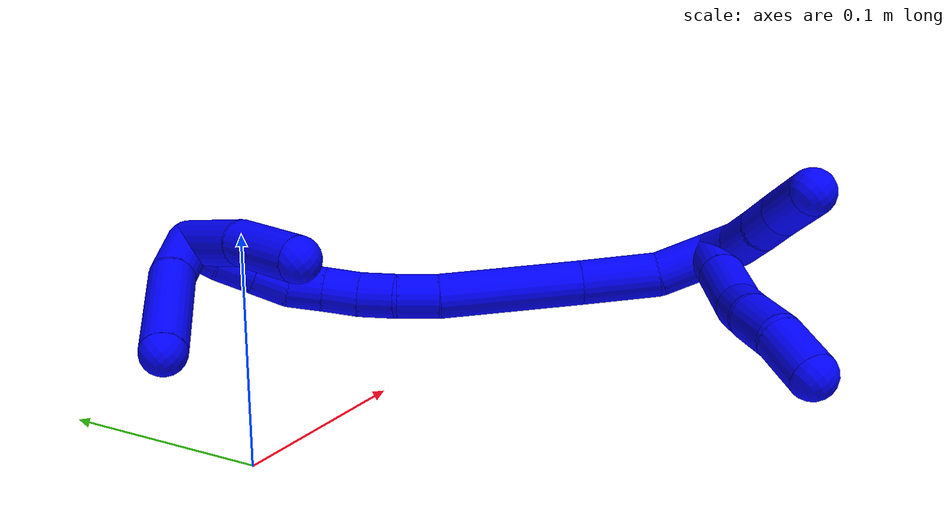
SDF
<sdf version="1.7">
 <world name="default">
  <model name="1">
   <static>0</static>
   <link name="1">
    <collision name="collision-cylinder-e_1_2_8">
     <pose>-0.008599 -0.011028 -0.005153 2.00796 -0.615013 -0.925629</pose>
     <geometry><cylinder><radius>0.0125</radius><length>0.029806</length></cylinder></geometry>
     <surface>
      <friction><ode><mu>1.16</mu><mu2>1.16</mu2><slip1>0</slip1><slip2>0</slip2></ode></friction>
      <contact><ode><kp>1e+06</kp><kd>1</kd><max_vel>0</max_vel><min_depth>0.001</min_depth></ode></contact>
     </surface>
    </collision>
    <visual name="visual-cylinder-e_1_2_8">
     <pose>-0.008599 -0.011028 -0.005153 2.00796 -0.615013 -0.925629</pose>
     <geometry><cylinder><radius>0.0125</radius><length>0.029806</length></cylinder></geometry>
     <material><ambient>0 0 1 1</ambient></material>
    </visual>
    <collision name="collision-cylinder-e_2_8_9">
     <pose>-0.027634 -0.036774 -0.01668 1.97941 -0.576877 -0.84871</pose>
     <geometry><cylinder><radius>0.0125</radius><length>0.038272</length></cylinder></geometry>
     <surface>
      <friction><ode><mu>1.16</mu><mu2>1.16</mu2><slip1>0</slip1><slip2>0</slip2></ode></friction>
      <contact><ode><kp>1e+06</kp><kd>1</kd><max_vel>0</max_vel><min_depth>0.001</min_depth></ode></contact>
     </surface>
    </collision>
    <visual name="visual-cylinder-e_2_8_9">
     <pose>-0.027634 -0.036774 -0.01668 1.97941 -0.576877 -0.84871</pose>
     <geometry><cylinder><radius>0.0125</radius><length>0.038272</length></cylinder></geometry>
     <material><ambient>0 0 1 1</ambient></material>
    </visual>
    <collision name="collision-cylinder-e_3_9_10">
     <pose>-0.046726 -0.059525 -0.025557 1.87296 -0.799512 -1.04255</pose>
     <geometry><cylinder><radius>0.0125</radius><length>0.02414</length></cylinder></geometry>
     <surface>
      <friction><ode><mu>1.16</mu><mu2>1.16</mu2><slip1>0</slip1><slip2>0</slip2></ode></friction>
      <contact><ode><kp>1e+06</kp><kd>1</kd><max_vel>0</max_vel><min_depth>0.001</min_depth></ode></contact>
     </surface>
    </collision>
    <visual name="visual-cylinder-e_3_9_10">
     <pose>-0.046726 -0.059525 -0.025557 1.87296 -0.799512 -1.04255</pose>
     <geometry><cylinder><radius>0.0125</radius><length>0.02414</length></cylinder></geometry>
     <material><ambient>0 0 1 1</ambient></material>
    </visual>
    <collision name="collision-cylinder-e_4_10_11">
     <pose>-0.063336 -0.079441 -0.029804 1.7165 -0.585017 -0.670789</pose>
     <geometry><cylinder><radius>0.0125</radius><length>0.028813</length></cylinder></geometry>
     <surface>
      <friction><ode><mu>1.16</mu><mu2>1.16</mu2><slip1>0</slip1><slip2>0</slip2></ode></friction>
      <contact><ode><kp>1e+06</kp><kd>1</kd><max_vel>0</max_vel><min_depth>0.001</min_depth></ode></contact>
     </surface>
    </collision>
    <visual name="visual-cylinder-e_4_10_11">
     <pose>-0.063336 -0.079441 -0.029804 1.7165 -0.585017 -0.670789</pose>
     <geometry><cylinder><radius>0.0125</radius><length>0.028813</length></cylinder></geometry>
     <material><ambient>0 0 1 1</ambient></material>
    </visual>
    <collision name="collision-cylinder-e_5_11_6">
     <pose>-0.075026 -0.105031 -0.034373 1.77403 -0.260808 -0.319126</pose>
     <geometry><cylinder><radius>0.0125</radius><length>0.028968</length></cylinder></geometry>
     <surface>
      <friction><ode><mu>1.16</mu><mu2>1.16</mu2><slip1>0</slip1><slip2>0</slip2></ode></friction>
      <contact><ode><kp>1e+06</kp><kd>1</kd><max_vel>0</max_vel><min_depth>0.001</min_depth></ode></contact>
     </surface>
    </collision>
    <visual name="visual-cylinder-e_5_11_6">
     <pose>-0.075026 -0.105031 -0.034373 1.77403 -0.260808 -0.319126</pose>
     <geometry><cylinder><radius>0.0125</radius><length>0.028968</length></cylinder></geometry>
     <material><ambient>0 0 1 1</ambient></material>
    </visual>
    <collision name="collision-cylinder-e_1_2_12">
     <pose>-0.007335 -0.006827 0.004933 0.945041 -0.716452 -0.378149</pose>
     <geometry><cylinder><radius>0.0125</radius><length>0.022338</length></cylinder></geometry>
     <surface>
      <friction><ode><mu>1.16</mu><mu2>1.16</mu2><slip1>0</slip1><slip2>0</slip2></ode></friction>
      <contact><ode><kp>1e+06</kp><kd>1</kd><max_vel>0</max_vel><min_depth>0.001</min_depth></ode></contact>
     </surface>
    </collision>
    <visual name="visual-cylinder-e_1_2_12">
     <pose>-0.007335 -0.006827 0.004933 0.945041 -0.716452 -0.378149</pose>
     <geometry><cylinder><radius>0.0125</radius><length>0.022338</length></cylinder></geometry>
     <material><ambient>0 0 1 1</ambient></material>
    </visual>
    <collision name="collision-cylinder-e_2_12_13">
     <pose>-0.024064 -0.019197 0.01398 0.932449 -0.937142 -0.498827</pose>
     <geometry><cylinder><radius>0.0125</radius><length>0.023315</length></cylinder></geometry>
     <surface>
      <friction><ode><mu>1.16</mu><mu2>1.16</mu2><slip1>0</slip1><slip2>0</slip2></ode></friction>
      <contact><ode><kp>1e+06</kp><kd>1</kd><max_vel>0</max_vel><min_depth>0.001</min_depth></ode></contact>
     </surface>
    </collision>
    <visual name="visual-cylinder-e_2_12_13">
     <pose>-0.024064 -0.019197 0.01398 0.932449 -0.937142 -0.498827</pose>
     <geometry><cylinder><radius>0.0125</radius><length>0.023315</length></cylinder></geometry>
     <material><ambient>0 0 1 1</ambient></material>
    </visual>
    <collision name="collision-cylinder-e_3_13_14">
     <pose>-0.041321 -0.029213 0.022423 0.801542 -0.901083 -0.40431</pose>
     <geometry><cylinder><radius>0.0125</radius><length>0.020057</length></cylinder></geometry>
     <surface>
      <friction><ode><mu>1.16</mu><mu2>1.16</mu2><slip1>0</slip1><slip2>0</slip2></ode></friction>
      <contact><ode><kp>1e+06</kp><kd>1</kd><max_vel>0</max_vel><min_depth>0.001</min_depth></ode></contact>
     </surface>
    </collision>
    <visual name="visual-cylinder-e_3_13_14">
     <pose>-0.041321 -0.029213 0.022423 0.801542 -0.901083 -0.40431</pose>
     <geometry><cylinder><radius>0.0125</radius><length>0.020057</length></cylinder></geometry>
     <material><ambient>0 0 1 1</ambient></material>
    </visual>
    <collision name="collision-cylinder-e_4_14_5">
     <pose>-0.063803 -0.041842 0.030451 1.14518 -1.02116 -0.693003</pose>
     <geometry><cylinder><radius>0.0125</radius><length>0.03429</length></cylinder></geometry>
     <surface>
      <friction><ode><mu>1.16</mu><mu2>1.16</mu2><slip1>0</slip1><slip2>0</slip2></ode></friction>
      <contact><ode><kp>1e+06</kp><kd>1</kd><max_vel>0</max_vel><min_depth>0.001</min_depth></ode></contact>
     </surface>
    </collision>
    <visual name="visual-cylinder-e_4_14_5">
     <pose>-0.063803 -0.041842 0.030451 1.14518 -1.02116 -0.693003</pose>
     <geometry><cylinder><radius>0.0125</radius><length>0.03429</length></cylinder></geometry>
     <material><ambient>0 0 1 1</ambient></material>
    </visual>
    <collision name="collision-cylinder-e_1_2_15">
     <pose>-0.000356 0.006197 -0.014425 -2.73582 -0.022688 0.110177</pose>
     <geometry><cylinder><radius>0.0125</radius><length>0.031408</length></cylinder></geometry>
     <surface>
      <friction><ode><mu>1.16</mu><mu2>1.16</mu2><slip1>0</slip1><slip2>0</slip2></ode></friction>
      <contact><ode><kp>1e+06</kp><kd>1</kd><max_vel>0</max_vel><min_depth>0.001</min_depth></ode></contact>
     </surface>
    </collision>
    <visual name="visual-cylinder-e_1_2_15">
     <pose>-0.000356 0.006197 -0.014425 -2.73582 -0.022688 0.110177</pose>
     <geometry><cylinder><radius>0.0125</radius><length>0.031408</length></cylinder></geometry>
     <material><ambient>0 0 1 1</ambient></material>
    </visual>
    <collision name="collision-cylinder-e_2_15_16">
     <pose>-0.004538 0.024896 -0.046279 -2.51937 -0.176484 0.536989</pose>
     <geometry><cylinder><radius>0.0125</radius><length>0.043573</length></cylinder></geometry>
     <surface>
      <friction><ode><mu>1.16</mu><mu2>1.16</mu2><slip1>0</slip1><slip2>0</slip2></ode></friction>
      <contact><ode><kp>1e+06</kp><kd>1</kd><max_vel>0</max_vel><min_depth>0.001</min_depth></ode></contact>
     </surface>
    </collision>
    <visual name="visual-cylinder-e_2_15_16">
     <pose>-0.004538 0.024896 -0.046279 -2.51937 -0.176484 0.536989</pose>
     <geometry><cylinder><radius>0.0125</radius><length>0.043573</length></cylinder></geometry>
     <material><ambient>0 0 1 1</ambient></material>
    </visual>
    <collision name="collision-cylinder-e_3_16_17">
     <pose>-0.021243 0.057374 -0.096531 -2.59486 -0.323433 1.05393</pose>
     <geometry><cylinder><radius>0.0125</radius><length>0.081052</length></cylinder></geometry>
     <surface>
      <friction><ode><mu>1.16</mu><mu2>1.16</mu2><slip1>0</slip1><slip2>0</slip2></ode></friction>
      <contact><ode><kp>1e+06</kp><kd>1</kd><max_vel>0</max_vel><min_depth>0.001</min_depth></ode></contact>
     </surface>
    </collision>
    <visual name="visual-cylinder-e_3_16_17">
     <pose>-0.021243 0.057374 -0.096531 -2.59486 -0.323433 1.05393</pose>
     <geometry><cylinder><radius>0.0125</radius><length>0.081052</length></cylinder></geometry>
     <material><ambient>0 0 1 1</ambient></material>
    </visual>
    <collision name="collision-cylinder-e_4_17_18">
     <pose>-0.038031 0.084178 -0.138159 -2.48198 -0.33733 0.923219</pose>
     <geometry><cylinder><radius>0.0125</radius><length>0.023614</length></cylinder></geometry>
     <surface>
      <friction><ode><mu>1.16</mu><mu2>1.16</mu2><slip1>0</slip1><slip2>0</slip2></ode></friction>
      <contact><ode><kp>1e+06</kp><kd>1</kd><max_vel>0</max_vel><min_depth>0.001</min_depth></ode></contact>
     </surface>
    </collision>
    <visual name="visual-cylinder-e_4_17_18">
     <pose>-0.038031 0.084178 -0.138159 -2.48198 -0.33733 0.923219</pose>
     <geometry><cylinder><radius>0.0125</radius><length>0.023614</length></cylinder></geometry>
     <material><ambient>0 0 1 1</ambient></material>
    </visual>
    <collision name="collision-cylinder-e_5_18_19">
     <pose>-0.043686 0.098166 -0.153951 -2.34403 -0.172906 0.405722</pose>
     <geometry><cylinder><radius>0.0125</radius><length>0.020312</length></cylinder></geometry>
     <surface>
      <friction><ode><mu>1.16</mu><mu2>1.16</mu2><slip1>0</slip1><slip2>0</slip2></ode></friction>
      <contact><ode><kp>1e+06</kp><kd>1</kd><max_vel>0</max_vel><min_depth>0.001</min_depth></ode></contact>
     </surface>
    </collision>
    <visual name="visual-cylinder-e_5_18_19">
     <pose>-0.043686 0.098166 -0.153951 -2.34403 -0.172906 0.405722</pose>
     <geometry><cylinder><radius>0.0125</radius><length>0.020312</length></cylinder></geometry>
     <material><ambient>0 0 1 1</ambient></material>
    </visual>
    <collision name="collision-cylinder-e_6_19_20">
     <pose>-0.048337 0.112512 -0.167261 -2.29233 -0.294612 0.634204</pose>
     <geometry><cylinder><radius>0.0125</radius><length>0.020005</length></cylinder></geometry>
     <surface>
      <friction><ode><mu>1.16</mu><mu2>1.16</mu2><slip1>0</slip1><slip2>0</slip2></ode></friction>
      <contact><ode><kp>1e+06</kp><kd>1</kd><max_vel>0</max_vel><min_depth>0.001</min_depth></ode></contact>
     </surface>
    </collision>
    <visual name="visual-cylinder-e_6_19_20">
     <pose>-0.048337 0.112512 -0.167261 -2.29233 -0.294612 0.634204</pose>
     <geometry><cylinder><radius>0.0125</radius><length>0.020005</length></cylinder></geometry>
     <material><ambient>0 0 1 1</ambient></material>
    </visual>
    <collision name="collision-cylinder-e_7_20_21">
     <pose>-0.054317 0.126665 -0.180085 -2.3216 -0.312204 0.694847</pose>
     <geometry><cylinder><radius>0.0125</radius><length>0.020026</length></cylinder></geometry>
     <surface>
      <friction><ode><mu>1.16</mu><mu2>1.16</mu2><slip1>0</slip1><slip2>0</slip2></ode></friction>
      <contact><ode><kp>1e+06</kp><kd>1</kd><max_vel>0</max_vel><min_depth>0.001</min_depth></ode></contact>
     </surface>
    </collision>
    <visual name="visual-cylinder-e_7_20_21">
     <pose>-0.054317 0.126665 -0.180085 -2.3216 -0.312204 0.694847</pose>
     <geometry><cylinder><radius>0.0125</radius><length>0.020026</length></cylinder></geometry>
     <material><ambient>0 0 1 1</ambient></material>
    </visual>
    <collision name="collision-cylinder-e_8_21_22">
     <pose>-0.063023 0.140436 -0.191278 -2.17458 -0.598036 1.06173</pose>
     <geometry><cylinder><radius>0.0125</radius><length>0.020001</length></cylinder></geometry>
     <surface>
      <friction><ode><mu>1.16</mu><mu2>1.16</mu2><slip1>0</slip1><slip2>0</slip2></ode></friction>
      <contact><ode><kp>1e+06</kp><kd>1</kd><max_vel>0</max_vel><min_depth>0.001</min_depth></ode></contact>
     </surface>
    </collision>
    <visual name="visual-cylinder-e_8_21_22">
     <pose>-0.063023 0.140436 -0.191278 -2.17458 -0.598036 1.06173</pose>
     <geometry><cylinder><radius>0.0125</radius><length>0.020001</length></cylinder></geometry>
     <material><ambient>0 0 1 1</ambient></material>
    </visual>
    <collision name="collision-cylinder-e_9_22_23">
     <pose>-0.074117 0.154142 -0.200719 -2.17339 -0.577797 1.02891</pose>
     <geometry><cylinder><radius>0.0125</radius><length>0.020004</length></cylinder></geometry>
     <surface>
      <friction><ode><mu>1.16</mu><mu2>1.16</mu2><slip1>0</slip1><slip2>0</slip2></ode></friction>
      <contact><ode><kp>1e+06</kp><kd>1</kd><max_vel>0</max_vel><min_depth>0.001</min_depth></ode></contact>
     </surface>
    </collision>
    <visual name="visual-cylinder-e_9_22_23">
     <pose>-0.074117 0.154142 -0.200719 -2.17339 -0.577797 1.02891</pose>
     <geometry><cylinder><radius>0.0125</radius><length>0.020004</length></cylinder></geometry>
     <material><ambient>0 0 1 1</ambient></material>
    </visual>
    <collision name="collision-cylinder-e_10_23_1">
     <pose>-0.085066 0.168574 -0.209108 -2.02111 -0.580645 0.888983</pose>
     <geometry><cylinder><radius>0.0125</radius><length>0.020004</length></cylinder></geometry>
     <surface>
      <friction><ode><mu>1.16</mu><mu2>1.16</mu2><slip1>0</slip1><slip2>0</slip2></ode></friction>
      <contact><ode><kp>1e+06</kp><kd>1</kd><max_vel>0</max_vel><min_depth>0.001</min_depth></ode></contact>
     </surface>
    </collision>
    <visual name="visual-cylinder-e_10_23_1">
     <pose>-0.085066 0.168574 -0.209108 -2.02111 -0.580645 0.888983</pose>
     <geometry><cylinder><radius>0.0125</radius><length>0.020004</length></cylinder></geometry>
     <material><ambient>0 0 1 1</ambient></material>
    </visual>
    <collision name="collision-cylinder-e_1_1_24">
     <pose>-0.099882 0.163033 -0.22185 2.1791 -0.529846 -0.958308</pose>
     <geometry><cylinder><radius>0.0125</radius><length>0.036916</length></cylinder></geometry>
     <surface>
      <friction><ode><mu>1.16</mu><mu2>1.16</mu2><slip1>0</slip1><slip2>0</slip2></ode></friction>
      <contact><ode><kp>1e+06</kp><kd>1</kd><max_vel>0</max_vel><min_depth>0.001</min_depth></ode></contact>
     </surface>
    </collision>
    <visual name="visual-cylinder-e_1_1_24">
     <pose>-0.099882 0.163033 -0.22185 2.1791 -0.529846 -0.958308</pose>
     <geometry><cylinder><radius>0.0125</radius><length>0.036916</length></cylinder></geometry>
     <material><ambient>0 0 1 1</ambient></material>
    </visual>
    <collision name="collision-cylinder-e_2_24_4">
     <pose>-0.121094 0.123733 -0.243824 2.02702 -0.386294 -0.608231</pose>
     <geometry><cylinder><radius>0.0125</radius><length>0.063084</length></cylinder></geometry>
     <surface>
      <friction><ode><mu>1.16</mu><mu2>1.16</mu2><slip1>0</slip1><slip2>0</slip2></ode></friction>
      <contact><ode><kp>1e+06</kp><kd>1</kd><max_vel>0</max_vel><min_depth>0.001</min_depth></ode></contact>
     </surface>
    </collision>
    <visual name="visual-cylinder-e_2_24_4">
     <pose>-0.121094 0.123733 -0.243824 2.02702 -0.386294 -0.608231</pose>
     <geometry><cylinder><radius>0.0125</radius><length>0.063084</length></cylinder></geometry>
     <material><ambient>0 0 1 1</ambient></material>
    </visual>
    <collision name="collision-cylinder-e_1_1_25">
     <pose>-0.101947 0.154649 -0.20224 1.11535 -0.445052 -0.280407</pose>
     <geometry><cylinder><radius>0.0125</radius><length>0.052934</length></cylinder></geometry>
     <surface>
      <friction><ode><mu>1.16</mu><mu2>1.16</mu2><slip1>0</slip1><slip2>0</slip2></ode></friction>
      <contact><ode><kp>1e+06</kp><kd>1</kd><max_vel>0</max_vel><min_depth>0.001</min_depth></ode></contact>
     </surface>
    </collision>
    <visual name="visual-cylinder-e_1_1_25">
     <pose>-0.101947 0.154649 -0.20224 1.11535 -0.445052 -0.280407</pose>
     <geometry><cylinder><radius>0.0125</radius><length>0.052934</length></cylinder></geometry>
     <material><ambient>0 0 1 1</ambient></material>
    </visual>
    <collision name="collision-cylinder-e_2_25_3">
     <pose>-0.120201 0.111941 -0.184314 1.235 -0.295783 -0.210808</pose>
     <geometry><cylinder><radius>0.0125</radius><length>0.047066</length></cylinder></geometry>
     <surface>
      <friction><ode><mu>1.16</mu><mu2>1.16</mu2><slip1>0</slip1><slip2>0</slip2></ode></friction>
      <contact><ode><kp>1e+06</kp><kd>1</kd><max_vel>0</max_vel><min_depth>0.001</min_depth></ode></contact>
     </surface>
    </collision>
    <visual name="visual-cylinder-e_2_25_3">
     <pose>-0.120201 0.111941 -0.184314 1.235 -0.295783 -0.210808</pose>
     <geometry><cylinder><radius>0.0125</radius><length>0.047066</length></cylinder></geometry>
     <material><ambient>0 0 1 1</ambient></material>
    </visual>
    <collision name="collision-sphere-3">
     <pose>-0.127061 0.090688 -0.176896 0 -0 0</pose>
     <geometry><sphere><radius>0.0125</radius></sphere></geometry>
     <surface>
      <friction><ode><mu>1.16</mu><mu2>1.16</mu2><slip1>0</slip1><slip2>0</slip2></ode></friction>
      <contact><ode><kp>1e+06</kp><kd>1</kd><max_vel>0</max_vel><min_depth>0.001</min_depth></ode></contact>
     </surface>
    </collision>
    <visual name="visual-sphere-3">
     <pose>-0.127061 0.090688 -0.176896 0 -0 0</pose>
     <geometry><sphere><radius>0.0125</radius></sphere></geometry>
     <material><ambient>0 0 1 1</ambient></material>
    </visual>
    <collision name="collision-sphere-25">
     <pose>-0.113342 0.133195 -0.191732 0 -0 0</pose>
     <geometry><sphere><radius>0.0125</radius></sphere></geometry>
     <surface>
      <friction><ode><mu>1.16</mu><mu2>1.16</mu2><slip1>0</slip1><slip2>0</slip2></ode></friction>
      <contact><ode><kp>1e+06</kp><kd>1</kd><max_vel>0</max_vel><min_depth>0.001</min_depth></ode></contact>
     </surface>
    </collision>
    <visual name="visual-sphere-25">
     <pose>-0.113342 0.133195 -0.191732 0 -0 0</pose>
     <geometry><sphere><radius>0.0125</radius></sphere></geometry>
     <material><ambient>0 0 1 1</ambient></material>
    </visual>
    <collision name="collision-sphere-4">
     <pose>-0.132978 0.097504 -0.256696 0 -0 0</pose>
     <geometry><sphere><radius>0.0125</radius></sphere></geometry>
     <surface>
      <friction><ode><mu>1.16</mu><mu2>1.16</mu2><slip1>0</slip1><slip2>0</slip2></ode></friction>
      <contact><ode><kp>1e+06</kp><kd>1</kd><max_vel>0</max_vel><min_depth>0.001</min_depth></ode></contact>
     </surface>
    </collision>
    <visual name="visual-sphere-4">
     <pose>-0.132978 0.097504 -0.256696 0 -0 0</pose>
     <geometry><sphere><radius>0.0125</radius></sphere></geometry>
     <material><ambient>0 0 1 1</ambient></material>
    </visual>
    <collision name="collision-sphere-24">
     <pose>-0.109211 0.149962 -0.230952 0 -0 0</pose>
     <geometry><sphere><radius>0.0125</radius></sphere></geometry>
     <surface>
      <friction><ode><mu>1.16</mu><mu2>1.16</mu2><slip1>0</slip1><slip2>0</slip2></ode></friction>
      <contact><ode><kp>1e+06</kp><kd>1</kd><max_vel>0</max_vel><min_depth>0.001</min_depth></ode></contact>
     </surface>
    </collision>
    <visual name="visual-sphere-24">
     <pose>-0.109211 0.149962 -0.230952 0 -0 0</pose>
     <geometry><sphere><radius>0.0125</radius></sphere></geometry>
     <material><ambient>0 0 1 1</ambient></material>
    </visual>
    <collision name="collision-sphere-1">
     <pose>-0.090553 0.176103 -0.212748 0 -0 0</pose>
     <geometry><sphere><radius>0.0125</radius></sphere></geometry>
     <surface>
      <friction><ode><mu>1.16</mu><mu2>1.16</mu2><slip1>0</slip1><slip2>0</slip2></ode></friction>
      <contact><ode><kp>1e+06</kp><kd>1</kd><max_vel>0</max_vel><min_depth>0.001</min_depth></ode></contact>
     </surface>
    </collision>
    <visual name="visual-sphere-1">
     <pose>-0.090553 0.176103 -0.212748 0 -0 0</pose>
     <geometry><sphere><radius>0.0125</radius></sphere></geometry>
     <material><ambient>0 0 1 1</ambient></material>
    </visual>
    <collision name="collision-sphere-23">
     <pose>-0.07958 0.161044 -0.205468 0 -0 0</pose>
     <geometry><sphere><radius>0.0125</radius></sphere></geometry>
     <surface>
      <friction><ode><mu>1.16</mu><mu2>1.16</mu2><slip1>0</slip1><slip2>0</slip2></ode></friction>
      <contact><ode><kp>1e+06</kp><kd>1</kd><max_vel>0</max_vel><min_depth>0.001</min_depth></ode></contact>
     </surface>
    </collision>
    <visual name="visual-sphere-23">
     <pose>-0.07958 0.161044 -0.205468 0 -0 0</pose>
     <geometry><sphere><radius>0.0125</radius></sphere></geometry>
     <material><ambient>0 0 1 1</ambient></material>
    </visual>
    <collision name="collision-sphere-22">
     <pose>-0.068654 0.147239 -0.195971 0 -0 0</pose>
     <geometry><sphere><radius>0.0125</radius></sphere></geometry>
     <surface>
      <friction><ode><mu>1.16</mu><mu2>1.16</mu2><slip1>0</slip1><slip2>0</slip2></ode></friction>
      <contact><ode><kp>1e+06</kp><kd>1</kd><max_vel>0</max_vel><min_depth>0.001</min_depth></ode></contact>
     </surface>
    </collision>
    <visual name="visual-sphere-22">
     <pose>-0.068654 0.147239 -0.195971 0 -0 0</pose>
     <geometry><sphere><radius>0.0125</radius></sphere></geometry>
     <material><ambient>0 0 1 1</ambient></material>
    </visual>
    <collision name="collision-sphere-21">
     <pose>-0.057393 0.133632 -0.186586 0 -0 0</pose>
     <geometry><sphere><radius>0.0125</radius></sphere></geometry>
     <surface>
      <friction><ode><mu>1.16</mu><mu2>1.16</mu2><slip1>0</slip1><slip2>0</slip2></ode></friction>
      <contact><ode><kp>1e+06</kp><kd>1</kd><max_vel>0</max_vel><min_depth>0.001</min_depth></ode></contact>
     </surface>
    </collision>
    <visual name="visual-sphere-21">
     <pose>-0.057393 0.133632 -0.186586 0 -0 0</pose>
     <geometry><sphere><radius>0.0125</radius></sphere></geometry>
     <material><ambient>0 0 1 1</ambient></material>
    </visual>
    <collision name="collision-sphere-6">
     <pose>-0.078761 -0.118737 -0.037197 0 -0 0</pose>
     <geometry><sphere><radius>0.0125</radius></sphere></geometry>
     <surface>
      <friction><ode><mu>1.16</mu><mu2>1.16</mu2><slip1>0</slip1><slip2>0</slip2></ode></friction>
      <contact><ode><kp>1e+06</kp><kd>1</kd><max_vel>0</max_vel><min_depth>0.001</min_depth></ode></contact>
     </surface>
    </collision>
    <visual name="visual-sphere-6">
     <pose>-0.078761 -0.118737 -0.037197 0 -0 0</pose>
     <geometry><sphere><radius>0.0125</radius></sphere></geometry>
     <material><ambient>0 0 1 1</ambient></material>
    </visual>
    <collision name="collision-sphere-11">
     <pose>-0.071291 -0.091325 -0.031548 0 -0 0</pose>
     <geometry><sphere><radius>0.0125</radius></sphere></geometry>
     <surface>
      <friction><ode><mu>1.16</mu><mu2>1.16</mu2><slip1>0</slip1><slip2>0</slip2></ode></friction>
      <contact><ode><kp>1e+06</kp><kd>1</kd><max_vel>0</max_vel><min_depth>0.001</min_depth></ode></contact>
     </surface>
    </collision>
    <visual name="visual-sphere-11">
     <pose>-0.071291 -0.091325 -0.031548 0 -0 0</pose>
     <geometry><sphere><radius>0.0125</radius></sphere></geometry>
     <material><ambient>0 0 1 1</ambient></material>
    </visual>
    <collision name="collision-sphere-10">
     <pose>-0.05538 -0.067558 -0.028061 0 -0 0</pose>
     <geometry><sphere><radius>0.0125</radius></sphere></geometry>
     <surface>
      <friction><ode><mu>1.16</mu><mu2>1.16</mu2><slip1>0</slip1><slip2>0</slip2></ode></friction>
      <contact><ode><kp>1e+06</kp><kd>1</kd><max_vel>0</max_vel><min_depth>0.001</min_depth></ode></contact>
     </surface>
    </collision>
    <visual name="visual-sphere-10">
     <pose>-0.05538 -0.067558 -0.028061 0 -0 0</pose>
     <geometry><sphere><radius>0.0125</radius></sphere></geometry>
     <material><ambient>0 0 1 1</ambient></material>
    </visual>
    <collision name="collision-sphere-9">
     <pose>-0.038071 -0.051493 -0.023053 0 -0 0</pose>
     <geometry><sphere><radius>0.0125</radius></sphere></geometry>
     <surface>
      <friction><ode><mu>1.16</mu><mu2>1.16</mu2><slip1>0</slip1><slip2>0</slip2></ode></friction>
      <contact><ode><kp>1e+06</kp><kd>1</kd><max_vel>0</max_vel><min_depth>0.001</min_depth></ode></contact>
     </surface>
    </collision>
    <visual name="visual-sphere-9">
     <pose>-0.038071 -0.051493 -0.023053 0 -0 0</pose>
     <geometry><sphere><radius>0.0125</radius></sphere></geometry>
     <material><ambient>0 0 1 1</ambient></material>
    </visual>
    <collision name="collision-sphere-2">
     <geometry><sphere><radius>0.0125</radius></sphere></geometry>
     <surface>
      <friction><ode><mu>1.16</mu><mu2>1.16</mu2><slip1>0</slip1><slip2>0</slip2></ode></friction>
      <contact><ode><kp>1e+06</kp><kd>1</kd><max_vel>0</max_vel><min_depth>0.001</min_depth></ode></contact>
     </surface>
    </collision>
    <visual name="visual-sphere-2">
     <geometry><sphere><radius>0.0125</radius></sphere></geometry>
     <material><ambient>0 0 1 1</ambient></material>
    </visual>
    <collision name="collision-sphere-19">
     <pose>-0.045433 0.105326 -0.160939 0 -0 0</pose>
     <geometry><sphere><radius>0.0125</radius></sphere></geometry>
     <surface>
      <friction><ode><mu>1.16</mu><mu2>1.16</mu2><slip1>0</slip1><slip2>0</slip2></ode></friction>
      <contact><ode><kp>1e+06</kp><kd>1</kd><max_vel>0</max_vel><min_depth>0.001</min_depth></ode></contact>
     </surface>
    </collision>
    <visual name="visual-sphere-19">
     <pose>-0.045433 0.105326 -0.160939 0 -0 0</pose>
     <geometry><sphere><radius>0.0125</radius></sphere></geometry>
     <material><ambient>0 0 1 1</ambient></material>
    </visual>
    <collision name="collision-sphere-8">
     <pose>-0.017197 -0.022055 -0.010307 0 -0 0</pose>
     <geometry><sphere><radius>0.0125</radius></sphere></geometry>
     <surface>
      <friction><ode><mu>1.16</mu><mu2>1.16</mu2><slip1>0</slip1><slip2>0</slip2></ode></friction>
      <contact><ode><kp>1e+06</kp><kd>1</kd><max_vel>0</max_vel><min_depth>0.001</min_depth></ode></contact>
     </surface>
    </collision>
    <visual name="visual-sphere-8">
     <pose>-0.017197 -0.022055 -0.010307 0 -0 0</pose>
     <geometry><sphere><radius>0.0125</radius></sphere></geometry>
     <material><ambient>0 0 1 1</ambient></material>
    </visual>
    <collision name="collision-sphere-12">
     <pose>-0.01467 -0.013654 0.009867 0 -0 0</pose>
     <geometry><sphere><radius>0.0125</radius></sphere></geometry>
     <surface>
      <friction><ode><mu>1.16</mu><mu2>1.16</mu2><slip1>0</slip1><slip2>0</slip2></ode></friction>
      <contact><ode><kp>1e+06</kp><kd>1</kd><max_vel>0</max_vel><min_depth>0.001</min_depth></ode></contact>
     </surface>
    </collision>
    <visual name="visual-sphere-12">
     <pose>-0.01467 -0.013654 0.009867 0 -0 0</pose>
     <geometry><sphere><radius>0.0125</radius></sphere></geometry>
     <material><ambient>0 0 1 1</ambient></material>
    </visual>
    <collision name="collision-sphere-13">
     <pose>-0.033459 -0.02474 0.018093 0 -0 0</pose>
     <geometry><sphere><radius>0.0125</radius></sphere></geometry>
     <surface>
      <friction><ode><mu>1.16</mu><mu2>1.16</mu2><slip1>0</slip1><slip2>0</slip2></ode></friction>
      <contact><ode><kp>1e+06</kp><kd>1</kd><max_vel>0</max_vel><min_depth>0.001</min_depth></ode></contact>
     </surface>
    </collision>
    <visual name="visual-sphere-13">
     <pose>-0.033459 -0.02474 0.018093 0 -0 0</pose>
     <geometry><sphere><radius>0.0125</radius></sphere></geometry>
     <material><ambient>0 0 1 1</ambient></material>
    </visual>
    <collision name="collision-sphere-14">
     <pose>-0.049183 -0.033685 0.026753 0 -0 0</pose>
     <geometry><sphere><radius>0.0125</radius></sphere></geometry>
     <surface>
      <friction><ode><mu>1.16</mu><mu2>1.16</mu2><slip1>0</slip1><slip2>0</slip2></ode></friction>
      <contact><ode><kp>1e+06</kp><kd>1</kd><max_vel>0</max_vel><min_depth>0.001</min_depth></ode></contact>
     </surface>
    </collision>
    <visual name="visual-sphere-14">
     <pose>-0.049183 -0.033685 0.026753 0 -0 0</pose>
     <geometry><sphere><radius>0.0125</radius></sphere></geometry>
     <material><ambient>0 0 1 1</ambient></material>
    </visual>
    <collision name="collision-sphere-5">
     <pose>-0.078423 -0.049999 0.034149 0 -0 0</pose>
     <geometry><sphere><radius>0.0125</radius></sphere></geometry>
     <surface>
      <friction><ode><mu>1.16</mu><mu2>1.16</mu2><slip1>0</slip1><slip2>0</slip2></ode></friction>
      <contact><ode><kp>1e+06</kp><kd>1</kd><max_vel>0</max_vel><min_depth>0.001</min_depth></ode></contact>
     </surface>
    </collision>
    <visual name="visual-sphere-5">
     <pose>-0.078423 -0.049999 0.034149 0 -0 0</pose>
     <geometry><sphere><radius>0.0125</radius></sphere></geometry>
     <material><ambient>0 0 1 1</ambient></material>
    </visual>
    <collision name="collision-sphere-15">
     <pose>-0.000713 0.012395 -0.02885 0 -0 0</pose>
     <geometry><sphere><radius>0.0125</radius></sphere></geometry>
     <surface>
      <friction><ode><mu>1.16</mu><mu2>1.16</mu2><slip1>0</slip1><slip2>0</slip2></ode></friction>
      <contact><ode><kp>1e+06</kp><kd>1</kd><max_vel>0</max_vel><min_depth>0.001</min_depth></ode></contact>
     </surface>
    </collision>
    <visual name="visual-sphere-15">
     <pose>-0.000713 0.012395 -0.02885 0 -0 0</pose>
     <geometry><sphere><radius>0.0125</radius></sphere></geometry>
     <material><ambient>0 0 1 1</ambient></material>
    </visual>
    <collision name="collision-sphere-16">
     <pose>-0.008363 0.037397 -0.063707 0 -0 0</pose>
     <geometry><sphere><radius>0.0125</radius></sphere></geometry>
     <surface>
      <friction><ode><mu>1.16</mu><mu2>1.16</mu2><slip1>0</slip1><slip2>0</slip2></ode></friction>
      <contact><ode><kp>1e+06</kp><kd>1</kd><max_vel>0</max_vel><min_depth>0.001</min_depth></ode></contact>
     </surface>
    </collision>
    <visual name="visual-sphere-16">
     <pose>-0.008363 0.037397 -0.063707 0 -0 0</pose>
     <geometry><sphere><radius>0.0125</radius></sphere></geometry>
     <material><ambient>0 0 1 1</ambient></material>
    </visual>
    <collision name="collision-sphere-17">
     <pose>-0.034123 0.07735 -0.129354 0 -0 0</pose>
     <geometry><sphere><radius>0.0125</radius></sphere></geometry>
     <surface>
      <friction><ode><mu>1.16</mu><mu2>1.16</mu2><slip1>0</slip1><slip2>0</slip2></ode></friction>
      <contact><ode><kp>1e+06</kp><kd>1</kd><max_vel>0</max_vel><min_depth>0.001</min_depth></ode></contact>
     </surface>
    </collision>
    <visual name="visual-sphere-17">
     <pose>-0.034123 0.07735 -0.129354 0 -0 0</pose>
     <geometry><sphere><radius>0.0125</radius></sphere></geometry>
     <material><ambient>0 0 1 1</ambient></material>
    </visual>
    <collision name="collision-sphere-18">
     <pose>-0.041938 0.091006 -0.146964 0 -0 0</pose>
     <geometry><sphere><radius>0.0125</radius></sphere></geometry>
     <surface>
      <friction><ode><mu>1.16</mu><mu2>1.16</mu2><slip1>0</slip1><slip2>0</slip2></ode></friction>
      <contact><ode><kp>1e+06</kp><kd>1</kd><max_vel>0</max_vel><min_depth>0.001</min_depth></ode></contact>
     </surface>
    </collision>
    <visual name="visual-sphere-18">
     <pose>-0.041938 0.091006 -0.146964 0 -0 0</pose>
     <geometry><sphere><radius>0.0125</radius></sphere></geometry>
     <material><ambient>0 0 1 1</ambient></material>
    </visual>
    <collision name="collision-sphere-20">
     <pose>-0.051242 0.119698 -0.173584 0 -0 0</pose>
     <geometry><sphere><radius>0.0125</radius></sphere></geometry>
     <surface>
      <friction><ode><mu>1.16</mu><mu2>1.16</mu2><slip1>0</slip1><slip2>0</slip2></ode></friction>
      <contact><ode><kp>1e+06</kp><kd>1</kd><max_vel>0</max_vel><min_depth>0.001</min_depth></ode></contact>
     </surface>
    </collision>
    <visual name="visual-sphere-20">
     <pose>-0.051242 0.119698 -0.173584 0 -0 0</pose>
     <geometry><sphere><radius>0.0125</radius></sphere></geometry>
     <material><ambient>0 0 1 1</ambient></material>
    </visual>
    <inertial>
     <pose>-0.057037 0.053489 -0.106593 0 -0 0</pose>
     <mass>0.75</mass>
     <inertia><ixx>8.9e-05</ixx><ixy>0</ixy><ixz>0</ixz><iyy>-3e-06</iyy><iyz>0</iyz><izz>6.8e-05</izz></inertia>
    </inertial>
   </link>
   <pose>0.295939 -0.090983 0.033237 0.611454 0.753935 0.138772</pose>
  </model>
 </world>
</sdf>
